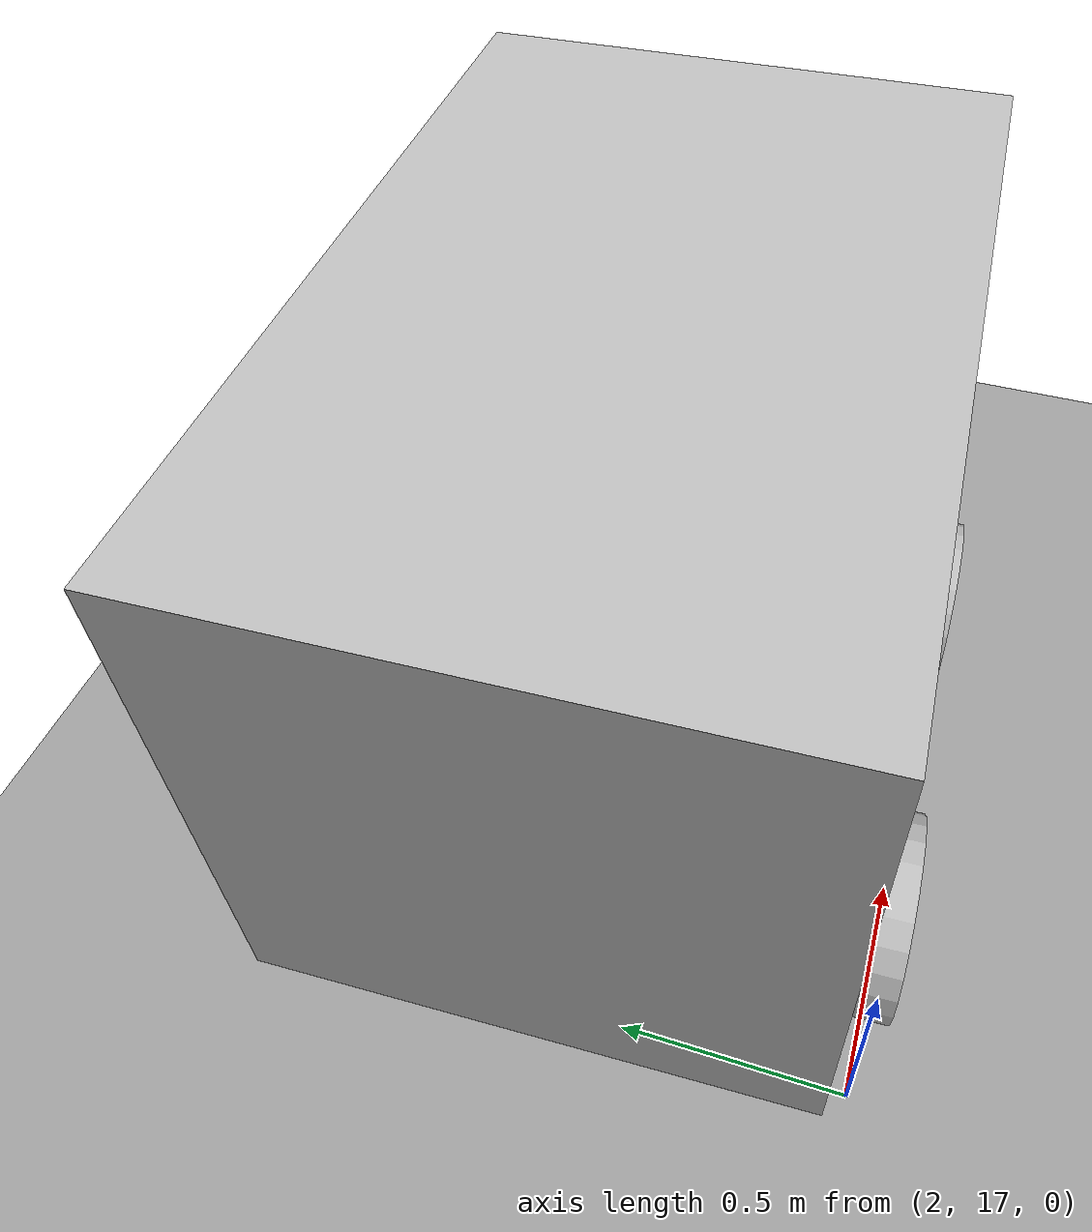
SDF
<sdf version="1.7">
 <world name="rover_world">
  <model name="ground_plane">
   <static>1</static>
   <link name="link">
    <collision name="collision">
     <geometry><plane><normal>0 0 1</normal><size>100 100</size></plane></geometry>
     <surface>
      <contact><collide_bitmask>65535</collide_bitmask></contact>
      <friction><ode><mu>100</mu><mu2>50</mu2></ode></friction>
     </surface>
    </collision>
    <visual name="visual">
     <cast_shadows>0</cast_shadows>
     <geometry><plane><normal>0 0 1</normal><size>100 100</size></plane></geometry>
     <material>
      <script><uri>file://media/materials/scripts/gazebo.material</uri><name>Gazebo/Grey</name></script>
     </material>
    </visual>
   </link>
  </model>
  <model name="high_friction_ground">
   <static>1</static>
   <pose>0 0 0.001 0 -0 0</pose>
   <link name="link">
    <collision name="collision">
     <geometry><plane><normal>0 0 1</normal><size>100 100</size></plane></geometry>
     <surface><friction><ode><mu>1.8</mu><mu2>1.8</mu2></ode></friction></surface>
    </collision>
    <visual name="visual">
     <cast_shadows>false</cast_shadows>
     <geometry><plane><normal>0 0 1</normal><size>100 100</size></plane></geometry>
     <material>
      <script><uri>file://media/materials/scripts/gazebo.material</uri><name>Gazebo/Grey</name></script>
     </material>
    </visual>
   </link>
  </model>
  <model name="fixed_camera">
   <static>1</static>
   <pose>10 0 50 3.14159 1.57079 3.14159</pose>
   <link name="camera_link">
    <sensor name="camera_sensor" type="camera">
     <camera>
      <horizontal_fov>1.57</horizontal_fov>
      <image><width>640</width><height>480</height><format>R8G8B8</format></image>
      <clip><near>0.1</near><far>100</far></clip>
     </camera>
     <always_on>1</always_on>
     <update_rate>30</update_rate>
     <visualize>1</visualize>
     <plugin name="ros_camera" filename="libgazebo_ros_camera.so">
      <ros><namespace>/fixed_camera</namespace><remapping>image_raw:=/camera/image_raw</remapping></ros>
      <camera_name>fixed_camera</camera_name>
      <image_topic_name>image_raw</image_topic_name>
      <camera_info_topic_name>camera_info</camera_info_topic_name>
      <frame_name>camera_frame</frame_name>
     </plugin>
    </sensor>
   </link>
  </model>
  <model name="robot_4">
   <link name="base_link">
    <inertial>
     <mass>5</mass>
     <inertia><ixx>1.2</ixx><ixy>0</ixy><ixz>0</ixz><iyy>1.95</iyy><iyz>0</iyz><izz>1.95</izz></inertia>
    </inertial>
    <collision name="base_link_collision"><geometry><box><size>1.8 1.2 1.2</size></box></geometry></collision>
    <visual name="base_link_visual"><geometry><box><size>1.8 1.2 1.2</size></box></geometry></visual>
   </link>
   <joint name="lb_wheel_joint" type="revolute">
    <pose relative_to="base_link">-0.45 0.6 -0.6 -1.5708 0 0</pose>
    <parent>base_link</parent>
    <child>lb_wheel</child>
    <axis>
     <xyz>0 0 1</xyz>
     <limit><lower>-1e+16</lower><upper>1e+16</upper></limit>
     <dynamics><spring_reference>0</spring_reference><spring_stiffness>0</spring_stiffness></dynamics>
    </axis>
   </joint>
   <link name="lb_wheel">
    <pose relative_to="lb_wheel_joint">0 0 0 0 -0 0</pose>
    <inertial>
     <mass>0.25</mass>
     <inertia>
      <ixx>0.0041724</ixx>
      <ixy>0</ixy>
      <ixz>0</ixz>
      <iyy>0.0041724</iyy>
      <iyz>0</iyz>
      <izz>0.00632813</izz>
     </inertia>
    </inertial>
    <collision name="lb_wheel_collision">
     <geometry><cylinder><length>0.22</length><radius>0.225</radius></cylinder></geometry>
    </collision>
    <visual name="lb_wheel_visual">
     <geometry><cylinder><length>0.22</length><radius>0.225</radius></cylinder></geometry>
    </visual>
   </link>
   <joint name="lf_wheel_joint" type="revolute">
    <pose relative_to="base_link">0.45 0.6 -0.6 -1.5708 0 0</pose>
    <parent>base_link</parent>
    <child>lf_wheel</child>
    <axis>
     <xyz>0 0 1</xyz>
     <limit><lower>-1e+16</lower><upper>1e+16</upper></limit>
     <dynamics><spring_reference>0</spring_reference><spring_stiffness>0</spring_stiffness></dynamics>
    </axis>
   </joint>
   <link name="lf_wheel">
    <pose relative_to="lf_wheel_joint">0 0 0 0 -0 0</pose>
    <inertial>
     <mass>0.25</mass>
     <inertia>
      <ixx>0.0041724</ixx>
      <ixy>0</ixy>
      <ixz>0</ixz>
      <iyy>0.0041724</iyy>
      <iyz>0</iyz>
      <izz>0.00632813</izz>
     </inertia>
    </inertial>
    <collision name="lf_wheel_collision">
     <geometry><cylinder><length>0.22</length><radius>0.225</radius></cylinder></geometry>
    </collision>
    <visual name="lf_wheel_visual">
     <geometry><cylinder><length>0.22</length><radius>0.225</radius></cylinder></geometry>
    </visual>
   </link>
   <joint name="rb_wheel_joint" type="revolute">
    <pose relative_to="base_link">-0.45 -0.6 -0.6 1.5708 -0 0</pose>
    <parent>base_link</parent>
    <child>rb_wheel</child>
    <axis>
     <xyz>0 0 -1</xyz>
     <limit><lower>-1e+16</lower><upper>1e+16</upper></limit>
     <dynamics><spring_reference>0</spring_reference><spring_stiffness>0</spring_stiffness></dynamics>
    </axis>
   </joint>
   <link name="rb_wheel">
    <pose relative_to="rb_wheel_joint">0 0 0 0 -0 0</pose>
    <inertial>
     <mass>0.25</mass>
     <inertia>
      <ixx>0.0041724</ixx>
      <ixy>0</ixy>
      <ixz>0</ixz>
      <iyy>0.0041724</iyy>
      <iyz>0</iyz>
      <izz>0.00632813</izz>
     </inertia>
    </inertial>
    <collision name="rb_wheel_collision">
     <geometry><cylinder><length>0.22</length><radius>0.225</radius></cylinder></geometry>
    </collision>
    <visual name="rb_wheel_visual">
     <geometry><cylinder><length>0.22</length><radius>0.225</radius></cylinder></geometry>
    </visual>
   </link>
   <joint name="rf_wheel_joint" type="revolute">
    <pose relative_to="base_link">0.45 -0.6 -0.6 1.5708 -0 0</pose>
    <parent>base_link</parent>
    <child>rf_wheel</child>
    <axis>
     <xyz>0 0 -1</xyz>
     <limit><lower>-1e+16</lower><upper>1e+16</upper></limit>
     <dynamics><spring_reference>0</spring_reference><spring_stiffness>0</spring_stiffness></dynamics>
    </axis>
   </joint>
   <link name="rf_wheel">
    <pose relative_to="rf_wheel_joint">0 0 0 0 -0 0</pose>
    <inertial>
     <mass>0.25</mass>
     <inertia>
      <ixx>0.0041724</ixx>
      <ixy>0</ixy>
      <ixz>0</ixz>
      <iyy>0.0041724</iyy>
      <iyz>0</iyz>
      <izz>0.00632813</izz>
     </inertia>
    </inertial>
    <collision name="rf_wheel_collision">
     <geometry><cylinder><length>0.22</length><radius>0.225</radius></cylinder></geometry>
    </collision>
    <visual name="rf_wheel_visual">
     <geometry><cylinder><length>0.22</length><radius>0.225</radius></cylinder></geometry>
    </visual>
   </link>
   <static>0</static>
   <plugin name="gazebo_control" filename="libgazebo_ros_diff_drive.so">
    <num_wheel_pairs>2</num_wheel_pairs>
    <ros><namespace>robot4</namespace></ros>
    <left_joint>lb_wheel_joint</left_joint>
    <right_joint>rb_wheel_joint</right_joint>
    <left_joint>lf_wheel_joint</left_joint>
    <right_joint>rf_wheel_joint</right_joint>
    <wheel_separation>1.2</wheel_separation>
    <wheel_diameter>0.45</wheel_diameter>
    <command_topic>cmd_vel</command_topic>
    <update_rate>50</update_rate>
    <max_wheel_torque>100</max_wheel_torque>
    <max_wheel_acceleration>5.0</max_wheel_acceleration>
    <odometry_frame>odom</odometry_frame>
    <robot_base_frame>base_link</robot_base_frame>
    <publish_odom>1</publish_odom>
    <publish_odom_tf>1</publish_odom_tf>
    <publish_wheel_tf>1</publish_wheel_tf>
   </plugin>
   <pose>2.74615 17.6794 0.826004 -5e-06 1e-06 0.033863</pose>
  </model>
 </world>
</sdf>
